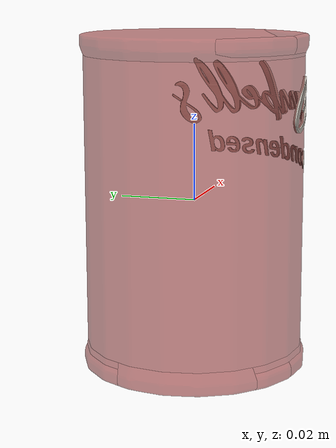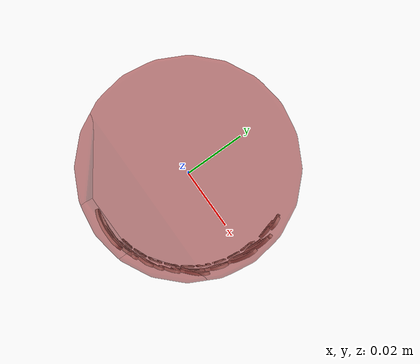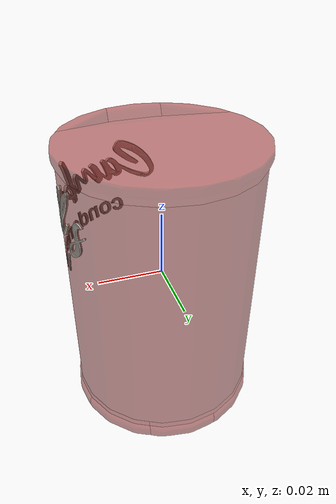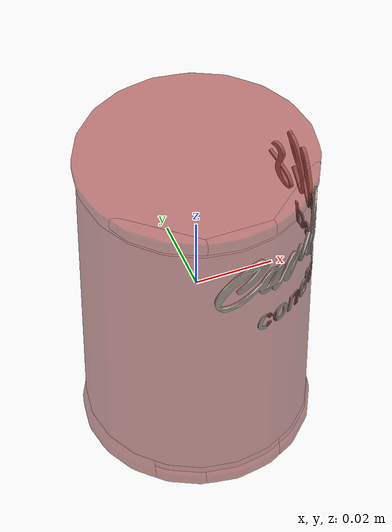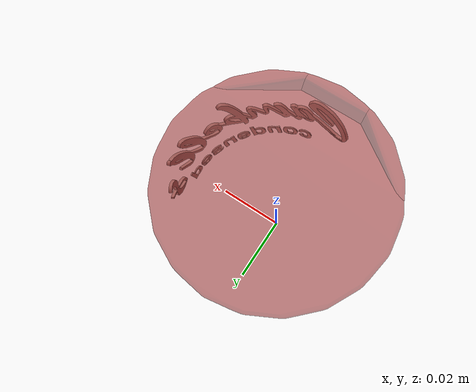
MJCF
<?xml version='1.0' encoding='utf-8'?>
<mujoco model="canned_food_6">
  <asset>
    <mesh file="visual/model_normalized_0.obj" name="model_normalized_0_vis" scale="0.08549999999999995 0.08549999999999995 0.08549999999999995" refquat="1.0 0.0 0.0 0.0" />
    <texture type="2d" name="image0" file="visual/image0.png" />
    <material name="lambert4SG" texture="image0" specular="0.5" shininess="0.25" />
    <mesh file="collision/collision_mesh_collision_0.obj" name="canned_collision_mesh_0" scale="0.08549999999999995 0.08549999999999995 0.08549999999999995" refquat="1.0 0.0 0.0 0.0" />
    <mesh file="collision/collision_mesh_collision_1.obj" name="canned_collision_mesh_1" scale="0.08549999999999995 0.08549999999999995 0.08549999999999995" refquat="1.0 0.0 0.0 0.0" />
    <mesh file="collision/collision_mesh_collision_2.obj" name="canned_collision_mesh_2" scale="0.08549999999999995 0.08549999999999995 0.08549999999999995" refquat="1.0 0.0 0.0 0.0" />
    <mesh file="collision/collision_mesh_collision_3.obj" name="canned_collision_mesh_3" scale="0.08549999999999995 0.08549999999999995 0.08549999999999995" refquat="1.0 0.0 0.0 0.0" />
    <mesh file="collision/collision_mesh_collision_4.obj" name="canned_collision_mesh_4" scale="0.08549999999999995 0.08549999999999995 0.08549999999999995" refquat="1.0 0.0 0.0 0.0" />
    <mesh file="collision/collision_mesh_collision_5.obj" name="canned_collision_mesh_5" scale="0.08549999999999995 0.08549999999999995 0.08549999999999995" refquat="1.0 0.0 0.0 0.0" />
    <mesh file="collision/collision_mesh_collision_6.obj" name="canned_collision_mesh_6" scale="0.08549999999999995 0.08549999999999995 0.08549999999999995" refquat="1.0 0.0 0.0 0.0" />
    <mesh file="collision/collision_mesh_collision_7.obj" name="canned_collision_mesh_7" scale="0.08549999999999995 0.08549999999999995 0.08549999999999995" refquat="1.0 0.0 0.0 0.0" />
    <mesh file="collision/collision_mesh_collision_8.obj" name="canned_collision_mesh_8" scale="0.08549999999999995 0.08549999999999995 0.08549999999999995" refquat="1.0 0.0 0.0 0.0" />
    <mesh file="collision/collision_mesh_collision_9.obj" name="canned_collision_mesh_9" scale="0.08549999999999995 0.08549999999999995 0.08549999999999995" refquat="1.0 0.0 0.0 0.0" />
    <mesh file="collision/collision_mesh_collision_10.obj" name="canned_collision_mesh_10" scale="0.08549999999999995 0.08549999999999995 0.08549999999999995" refquat="1.0 0.0 0.0 0.0" />
    <mesh file="collision/collision_mesh_collision_11.obj" name="canned_collision_mesh_11" scale="0.08549999999999995 0.08549999999999995 0.08549999999999995" refquat="1.0 0.0 0.0 0.0" />
    <mesh file="collision/collision_mesh_collision_12.obj" name="canned_collision_mesh_12" scale="0.08549999999999995 0.08549999999999995 0.08549999999999995" refquat="1.0 0.0 0.0 0.0" />
    <mesh file="collision/collision_mesh_collision_13.obj" name="canned_collision_mesh_13" scale="0.08549999999999995 0.08549999999999995 0.08549999999999995" refquat="1.0 0.0 0.0 0.0" />
    <mesh file="collision/collision_mesh_collision_14.obj" name="canned_collision_mesh_14" scale="0.08549999999999995 0.08549999999999995 0.08549999999999995" refquat="1.0 0.0 0.0 0.0" />
    <mesh file="collision/collision_mesh_collision_15.obj" name="canned_collision_mesh_15" scale="0.08549999999999995 0.08549999999999995 0.08549999999999995" refquat="1.0 0.0 0.0 0.0" />
  </asset>
  <default>
    <default class="region">
      <geom group="1" conaffinity="0" contype="0" rgba="0 1 0 0" mass="0" />
    </default>
    <default class="collision">
      <geom group="0" rgba="0.5 0 0 0.5" density="1349.526462890" />
    </default>
  </default>
  <worldbody>
    <body>
      <body name="object">
        <geom solimp="0.998 0.998 0.001" solref="0.001 1" density="134.952646289" friction="0.95 0.3 0.1" type="mesh" mesh="model_normalized_0_vis" conaffinity="0" contype="0" group="1" material="lambert4SG" />
        <geom class="region" name="reg_bbox" type="box" pos="1.331662499999136e-06 2.509424999984354e-07 0.0" size="0.029229359602499984 0.02923044032249998 0.043215440624999976" />
        <geom mesh="canned_collision_mesh_0" type="mesh" class="collision" />
        <geom mesh="canned_collision_mesh_1" type="mesh" class="collision" />
        <geom mesh="canned_collision_mesh_2" type="mesh" class="collision" />
        <geom mesh="canned_collision_mesh_3" type="mesh" class="collision" />
        <geom mesh="canned_collision_mesh_4" type="mesh" class="collision" />
        <geom mesh="canned_collision_mesh_5" type="mesh" class="collision" />
        <geom mesh="canned_collision_mesh_6" type="mesh" class="collision" />
        <geom mesh="canned_collision_mesh_7" type="mesh" class="collision" />
        <geom mesh="canned_collision_mesh_8" type="mesh" class="collision" />
        <geom mesh="canned_collision_mesh_9" type="mesh" class="collision" />
        <geom mesh="canned_collision_mesh_10" type="mesh" class="collision" />
        <geom mesh="canned_collision_mesh_11" type="mesh" class="collision" />
        <geom mesh="canned_collision_mesh_12" type="mesh" class="collision" />
        <geom mesh="canned_collision_mesh_13" type="mesh" class="collision" />
        <geom mesh="canned_collision_mesh_14" type="mesh" class="collision" />
        <geom mesh="canned_collision_mesh_15" type="mesh" class="collision" />
      </body>
    </body>
  </worldbody>
</mujoco>
